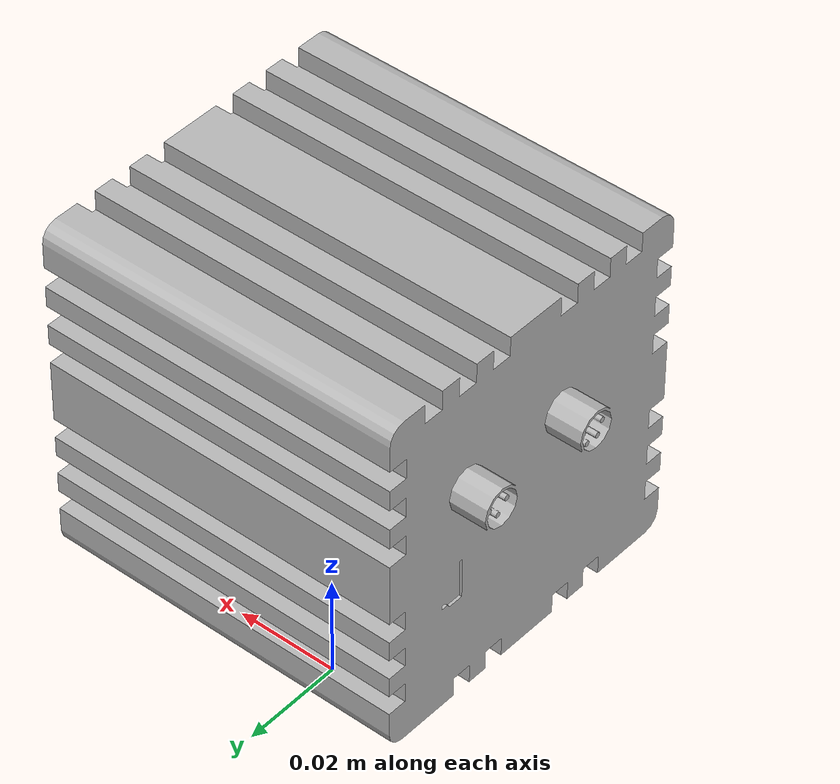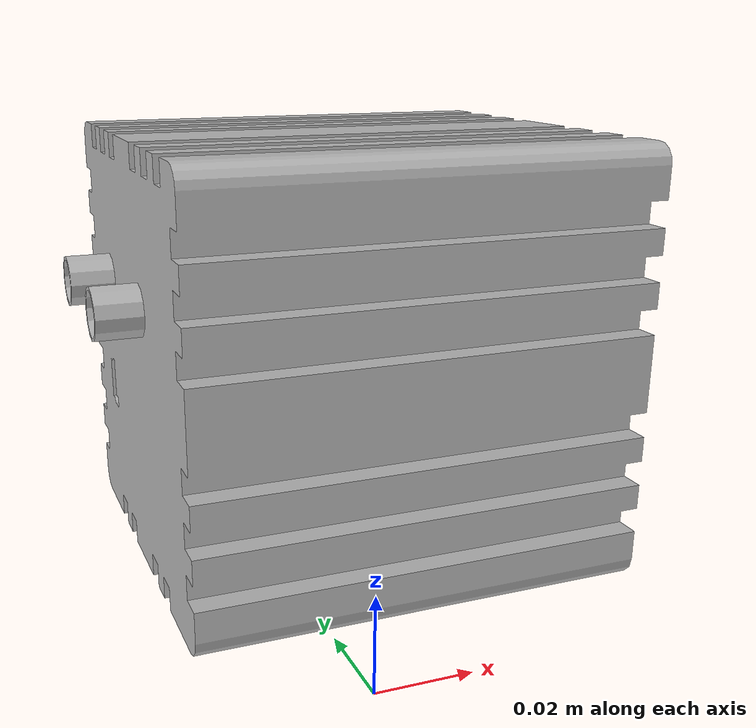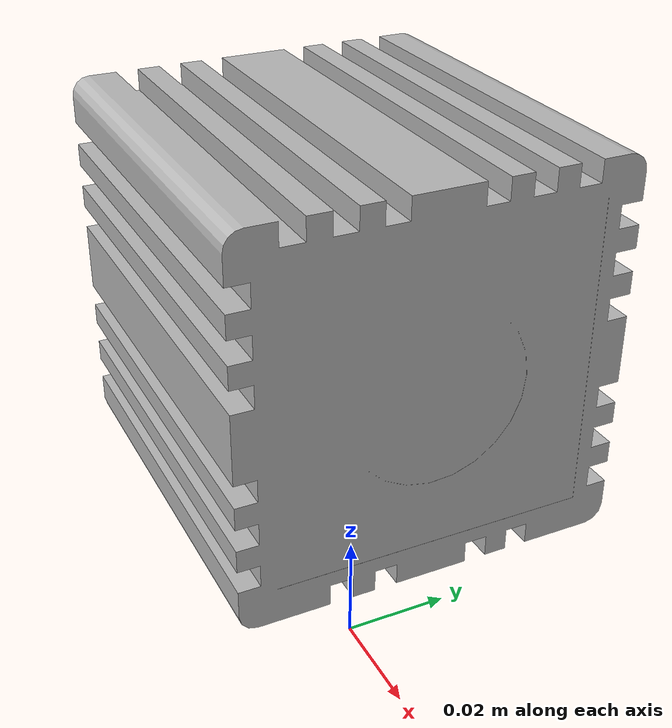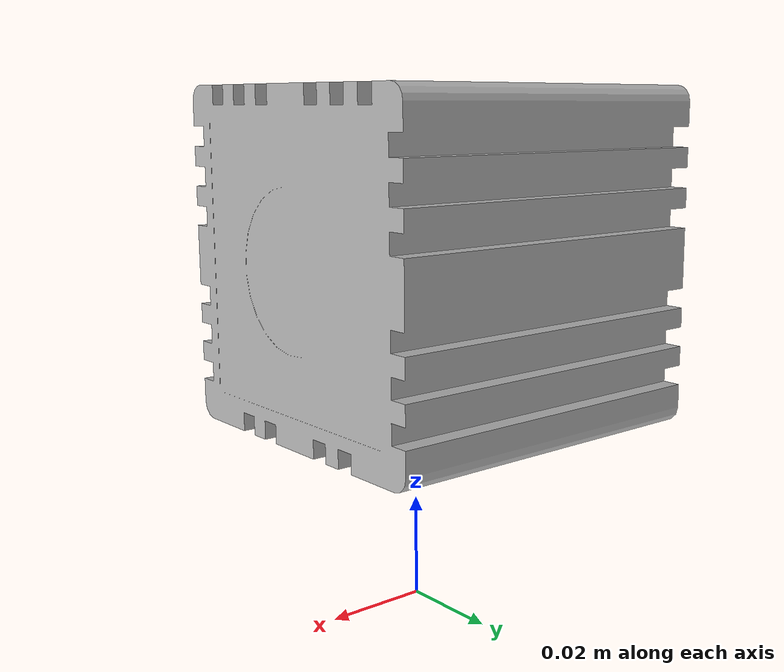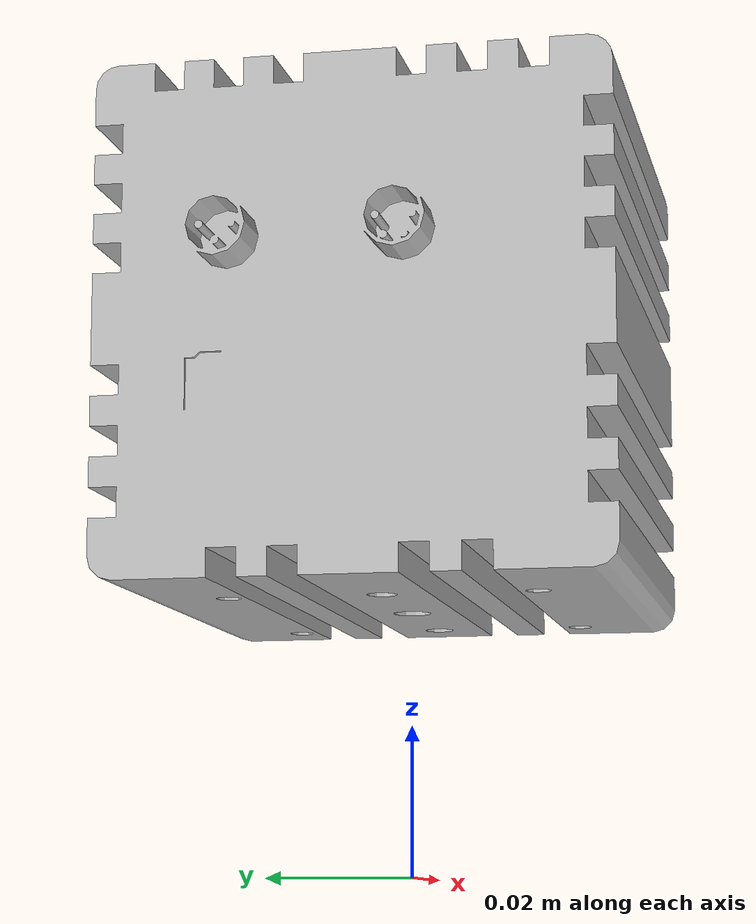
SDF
<?xml version="1.0" ?>
<sdf version="1.5">
  <model name="swissranger_camera">
    <pose>0 0 0.035 0 0 0</pose>
    <link name="link">
      <inertial>
        <mass>0.1</mass>
      </inertial>
      <visual name="visual">
        <geometry>
          <mesh>
            <uri>model://swissranger_camera_ariac/meshes/collada/SR4000.dae</uri>
          </mesh>
        </geometry>
      </visual>
      <collision name='collision'>
        <geometry>
          <box>
            <size>0.07 0.065 0.065</size>
          </box>
        </geometry>
      </collision>
    </link>
  </model>
</sdf>
